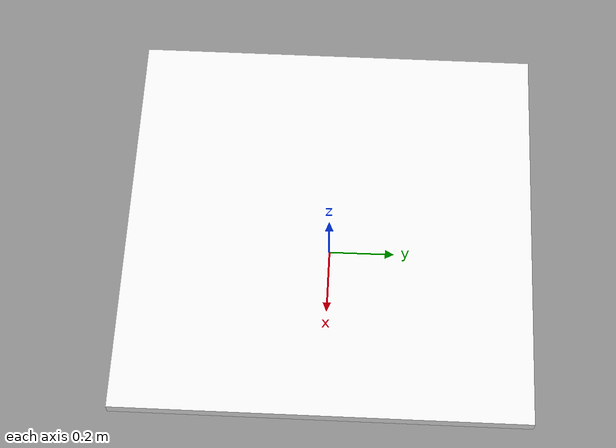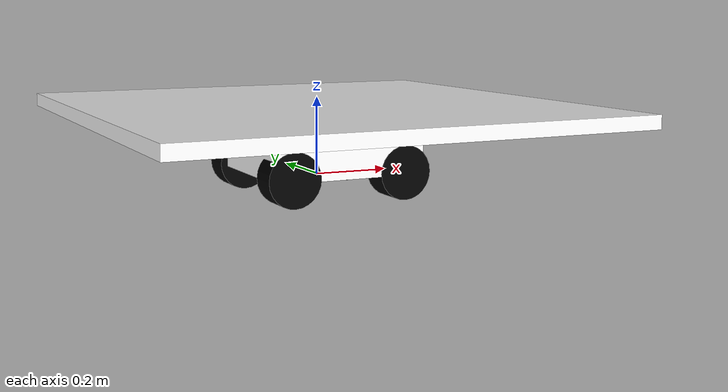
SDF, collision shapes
<sdf version='1.9'>
  <model name='r1_rover'>
    <link name='base_link'>
      <pose>0 0 0 0 -0 0</pose>
      <inertial>
        <pose>0 0 0 0 -0 0</pose>
        <mass>50.0</mass>
        <inertia>
          <ixx>0.185415</ixx>
          <ixy>0.0</ixy>
          <ixz>0.0</ixz>
          <iyy>0.185415</iyy>
          <iyz>0.0</iyz>
          <izz>0.266665</izz>
        </inertia>
      </inertial>
      <collision name='odom_fixed_joint_lump__base_link_collision'>
        <pose>0 0 0.075 0 -0 0</pose>
        <geometry>
          <box>
            <size>0.40 0.40 0.12</size>
          </box>
        </geometry>
      </collision>
      <collision name='aruco_landing_pad_collision'>
        <pose>0 0 0.1675 0 -0 0</pose>
        <geometry>
          <box>
            <size>1.20 1.20 0.035</size>
          </box>
        </geometry>
        <max_contacts>16</max_contacts>
        <surface>
          <friction>
            <ode>
              <mu>1.2</mu>
              <mu2>1.2</mu2>
            </ode>
          </friction>
          <bounce>
            <restitution_coefficient>0</restitution_coefficient>
            <threshold>1000000</threshold>
          </bounce>
          <contact>
            <ode>
              <min_depth>0.001</min_depth>
              <max_vel>0.02</max_vel>
              <kp>1000000</kp>
              <kd>100</kd>
            </ode>
          </contact>
        </surface>
      </collision>
      <sensor name='landing_pad_contact' type='contact'>
        <always_on>true</always_on>
        <update_rate>100</update_rate>
        <topic>/landing_pad/contact</topic>
        <contact>
          <collision>aruco_landing_pad_collision</collision>
        </contact>
      </sensor>
      <visual name='odom_fixed_joint_lump__base_link_visual'>
        <pose>0 0 0 0 -0 0</pose>
        <geometry>
          <mesh>
            <scale>1 1 1</scale>
            <uri>model://r1_rover/meshes/chassis_link.STL</uri>
          </mesh>
        </geometry>
        <material>
          <diffuse>1.0 1.0 1.0</diffuse>
          <specular>1.0 1.0 1.0</specular>
        </material>
      </visual>
      <visual name='odom_fixed_joint_lump__top_link_visual_1'>
        <pose>0 0 0.114486 0 -0 0</pose>
        <geometry>
          <mesh>
            <scale>1 1 1</scale>
            <uri>model://r1_rover/meshes/top_link.STL</uri>
          </mesh>
        </geometry>
        <material>
          <diffuse>1.0 1.0 1.0</diffuse>
          <specular>1.0 1.0 1.0</specular>
        </material>
      </visual>
      <visual name='odom_fixed_joint_lump__battery_link_visual_2'>
        <pose>-0.09302 -0.000128 0.114486 0 -0 0</pose>
        <geometry>
          <mesh>
            <scale>1 1 1</scale>
            <uri>model://r1_rover/meshes/battery_link.STL</uri>
          </mesh>
        </geometry>
        <material>
          <diffuse>0.0 0.0 0.0</diffuse>
          <specular>0.5 0.5 0.5</specular>
        </material>
      </visual>
      <visual name='odom_fixed_joint_lump__housing_link_visual_3'>
        <pose>0.03473 0 0.114486 0 -0 0</pose>
        <geometry>
          <mesh>
            <scale>1 1 1</scale>
            <uri>model://r1_rover/meshes/housing_link.STL</uri>
          </mesh>
        </geometry>
        <material>
          <diffuse>0.0 0.0 0.0</diffuse>
          <specular>0.5 0.5 0.5</specular>
        </material>
      </visual>
      <visual name='aruco_landing_marker_visual'>
        <pose>0 0 0.15 0 0 0</pose>
        <geometry>
          <plane>
            <normal>0 0 1</normal>
            <size>1.20 1.20</size>
          </plane>
        </geometry>
        <material>
          <ambient>1 1 1 1</ambient>
          <diffuse>1 1 1 1</diffuse>
          <pbr>
            <metal>
              <albedo_map>model://aruco_landing_marker/materials/textures/aruco_multi_scale_pad.png</albedo_map>
              <roughness>1.0</roughness>
              <metalness>0.0</metalness>
            </metal>
          </pbr>
        </material>
      </visual>
      <visual name='odom_fixed_joint_lump__l_antenna_link_visual_4'>
        <pose>-0.1565 0.0762 0.114486 0 -0 0</pose>
        <geometry>
          <mesh>
            <scale>1 1 1</scale>
            <uri>model://r1_rover/meshes/antenna_link.STL</uri>
          </mesh>
        </geometry>
        <material>
          <diffuse>0.0 0.0 0.0</diffuse>
          <specular>0.5 0.5 0.5</specular>
        </material>
      </visual>
      <visual name='odom_fixed_joint_lump__r_antenna_link_visual_5'>
        <pose>-0.1565 -0.0762 0.114486 0 -0 0</pose>
        <geometry>
          <mesh>
            <scale>1 1 1</scale>
            <uri>model://r1_rover/meshes/antenna_link.STL</uri>
          </mesh>
        </geometry>
        <material>
          <diffuse>0.0 0.0 0.0</diffuse>
          <specular>0.5 0.5 0.5</specular>
        </material>
      </visual>
      <sensor name="imu_sensor" type="imu">
        <pose degrees="true">0 0 0 180 0 0</pose>
        <always_on>1</always_on>
        <update_rate>1000</update_rate>
      </sensor>
      <sensor name="air_pressure_sensor" type="air_pressure">
        <always_on>1</always_on>
        <update_rate>50</update_rate>
        <air_pressure>
          <pressure>
            <noise type="gaussian">
              <mean>0</mean>
              <stddev>0.01</stddev>
            </noise>
          </pressure>
        </air_pressure>
      </sensor>
    </link>
      <link name='lf_wheel_link'>
      <pose>0.15 0.16317 0.0215 0 -0 0</pose>
      <inertial>
        <pose>0 0 0 1.57079632679 0 0</pose>
        <mass>0.414</mass>
        <inertia>
          <ixx>0.00068682</ixx>
          <ixy>0</ixy>
          <ixz>0</ixz>
          <iyy>0.00068682</iyy>
          <iyz>0</iyz>
          <izz>0.00097299</izz>
        </inertia>
      </inertial>
      <collision name='lf_wheel_link_collision'>
        <pose>0 0 0 1.57079632679 0 0</pose>
        <geometry>
          <cylinder>
            <radius>0.0686</radius>
            <length>0.0762</length>
          </cylinder>
        </geometry>
        <max_contacts>1</max_contacts>
        <surface>
          <friction>
            <torsional>
              <coefficient>0.25</coefficient>
              <use_patch_radius>1</use_patch_radius>
              <surface_radius>0.0686</surface_radius>
            </torsional>
            <ode>
              <mu>0.7</mu>
              <mu2>0.7</mu2>
              <fdir1>1 0 0</fdir1>
            </ode>
          </friction>
          <bounce>
            <restitution_coefficient>0</restitution_coefficient>
            <threshold>1e6</threshold>
          </bounce>
          <contact>
            <ode>
              <min_depth>0.001</min_depth>
              <max_vel>0.0</max_vel>
              <kp>1.0e6</kp>
              <kd>100.0</kd>
            </ode>
          </contact>
        </surface>
      </collision>
      <visual name='lf_wheel_link_visual'>
        <pose>0 0 0 0 -0 0</pose>
        <geometry>
          <mesh>
            <scale>1 1 1</scale>
            <uri>model://r1_rover/meshes/wheel_link.STL</uri>
          </mesh>
        </geometry>
        <material>
          <diffuse>0.0 0.0 0.0</diffuse>
          <specular>0.5 0.5 0.5</specular>
        </material>
      </visual>
    </link>
    <joint name='motor_0' type='revolute'>
      <child>lf_wheel_link</child>
      <parent>base_link</parent>
      <axis>
        <xyz>0 1 0</xyz>
        <limit>
          <lower>-1e+16</lower>
          <upper>1e+16</upper>
        </limit>
        <dynamics>
          <damping>0.0005</damping>
        </dynamics>
      </axis>
    </joint>
    <link name='lb_wheel_link'>
      <pose>-0.15 0.16317 0.0215 0 -0 0</pose>
      <inertial>
        <pose>0 0 0 1.57079632679 0 0</pose>
        <mass>0.414</mass>
        <inertia>
          <ixx>0.00068682</ixx>
          <ixy>0</ixy>
          <ixz>0</ixz>
          <iyy>0.00068682</iyy>
          <iyz>0</iyz>
          <izz>0.00097299</izz>
        </inertia>
      </inertial>
      <collision name='lb_wheel_link_collision'>
        <pose>0 0 0 1.57079632679 0 0</pose>
        <geometry>
          <cylinder>
            <radius>0.0686</radius>
            <length>0.0762</length>
          </cylinder>
        </geometry>
        <max_contacts>1</max_contacts>
        <surface>
          <friction>
            <torsional>
              <coefficient>0.25</coefficient>
              <use_patch_radius>1</use_patch_radius>
              <surface_radius>0.0686</surface_radius>
            </torsional>
            <ode>
              <mu>0.7</mu>
              <mu2>0.7</mu2>
              <fdir1>1 0 0</fdir1>
            </ode>
          </friction>
          <bounce>
            <restitution_coefficient>0</restitution_coefficient>
            <threshold>1e6</threshold>
          </bounce>
          <contact>
            <ode>
              <min_depth>0.001</min_depth>
              <max_vel>0.0</max_vel>
              <kp>1.0e6</kp>
              <kd>100.0</kd>
            </ode>
          </contact>
        </surface>
      </collision>
      <visual name='lb_wheel_link_visual'>
      <pose>0 0 0 0 -0 0</pose>
      <geometry>
        <mesh>
          <scale>1 1 1</scale>
          <uri>model://r1_rover/meshes/wheel_link.STL</uri>
        </mesh>
      </geometry>
      <material>
        <diffuse>0.0 0.0 0.0</diffuse>
        <specular>0.5 0.5 0.5</specular>
      </material>
      </visual>
    </link>
    <joint name='motor_1' type='revolute'>
      <child>lb_wheel_link</child>
      <parent>base_link</parent>
      <axis>
        <xyz>0 1 0</xyz>
        <limit>
          <lower>-1e+16</lower>
          <upper>1e+16</upper>
        </limit>
        <dynamics>
          <damping>0.0005</damping>
        </dynamics>
      </axis>
    </joint>
    <link name='rf_wheel_link'>
      <pose>0.15 -0.16317 0.0215 0 -0 0</pose>
      <inertial>
        <pose>0 0 0 1.57079632679 0 0</pose>
        <mass>0.414</mass>
        <inertia>
          <ixx>0.00068682</ixx>
          <ixy>0</ixy>
          <ixz>0</ixz>
          <iyy>0.00068682</iyy>
          <iyz>0</iyz>
          <izz>0.00097299</izz>
        </inertia>
      </inertial>
      <collision name='rf_wheel_link_collision'>
        <pose>0 0 0 1.57079632679 0 0</pose>
        <geometry>
          <cylinder>
            <radius>0.0686</radius>
            <length>0.0762</length>
          </cylinder>
        </geometry>
        <max_contacts>1</max_contacts>
        <surface>
          <friction>
            <torsional>
              <coefficient>0.25</coefficient>
              <use_patch_radius>1</use_patch_radius>
              <surface_radius>0.0686</surface_radius>
            </torsional>
            <ode>
              <mu>0.7</mu>
              <mu2>0.7</mu2>
              <fdir1>1 0 0</fdir1>
            </ode>
          </friction>
          <bounce>
            <restitution_coefficient>0</restitution_coefficient>
            <threshold>1e6</threshold>
          </bounce>
          <contact>
            <ode>
              <min_depth>0.001</min_depth>
              <max_vel>0.0</max_vel>
              <kp>1.0e6</kp>
              <kd>100.0</kd>
            </ode>
          </contact>
        </surface>
      </collision>
      <visual name='rf_wheel_link_visual'>
        <pose>0 0 0 0 -0 0</pose>
        <geometry>
          <mesh>
            <scale>1 1 1</scale>
            <uri>model://r1_rover/meshes/wheel_link.STL</uri>
          </mesh>
        </geometry>
        <material>
          <diffuse>0.0 0.0 0.0</diffuse>
          <specular>0.5 0.5 0.5</specular>
        </material>
      </visual>
    </link>
    <joint name='motor_2' type='revolute'>
      <child>rf_wheel_link</child>
      <parent>base_link</parent>
      <axis>
        <xyz>0 -1 0</xyz>
        <limit>
          <lower>-1e+16</lower>
          <upper>1e+16</upper>
        </limit>
        <dynamics>
          <damping>0.0005</damping>
        </dynamics>
      </axis>
    </joint>
    <link name='rb_wheel_link'>
      <pose>-0.15 -0.16317 0.0215 0 -0 0</pose>
      <inertial>
        <pose>0 0 0 1.57079632679 0 0</pose>
        <mass>0.414</mass>
        <inertia>
          <ixx>0.00068682</ixx>
          <ixy>0</ixy>
          <ixz>0</ixz>
          <iyy>0.00068682</iyy>
          <iyz>0</iyz>
          <izz>0.00097299</izz>
        </inertia>
      </inertial>
      <collision name='rb_wheel_link_collision'>
        <pose>0 0 0 1.57079632679 0 0</pose>
        <geometry>
          <cylinder>
            <radius>0.0686</radius>
            <length>0.0762</length>
          </cylinder>
        </geometry>
        <max_contacts>1</max_contacts>
        <surface>
          <friction>
            <torsional>
              <coefficient>0.25</coefficient>
              <use_patch_radius>1</use_patch_radius>
              <surface_radius>0.0686</surface_radius>
            </torsional>
            <ode>
              <mu>0.7</mu>
              <mu2>0.7</mu2>
              <fdir1>1 0 0</fdir1>
            </ode>
          </friction>
          <bounce>
            <restitution_coefficient>0</restitution_coefficient>
            <threshold>1e6</threshold>
          </bounce>
          <contact>
          <ode>
            <min_depth>0.001</min_depth>
            <kp>1e8</kp>
          </ode>
          </contact>
        </surface>
      </collision>
      <visual name='rb_wheel_link_visual'>
        <pose>0 0 0 0 -0 0</pose>
        <geometry>
          <mesh>
            <scale>1 1 1</scale>
            <uri>model://r1_rover/meshes/wheel_link.STL</uri>
          </mesh>
        </geometry>
        <material>
          <diffuse>0.0 0.0 0.0</diffuse>
          <specular>0.5 0.5 0.5</specular>
        </material>
      </visual>
    </link>
    <joint name='motor_3' type='revolute'>
      <child>rb_wheel_link</child>
      <parent>base_link</parent>
      <axis>
        <xyz>0 -1 0</xyz>
        <limit>
          <lower>-1e+16</lower>
          <upper>1e+16</upper>
        </limit>
        <dynamics>
          <damping>0.0005</damping>
        </dynamics>
      </axis>
    </joint>
    <static>0</static>

    <!-- plugins -->
    <plugin name="gz::sim::systems::JointStatePublisher"
      filename="gz-sim-joint-state-publisher-system">
    </plugin>

    <plugin name="gz::sim::systems::OdometryPublisher"
      filename="gz-sim-odometry-publisher-system">
      <odom_frame>odom</odom_frame>
      <robot_base_frame>base_link</robot_base_frame>
      <dimensions>3</dimensions>
    </plugin>

    <plugin filename="gz-sim-apply-joint-force-system"
      name="gz::sim::systems::ApplyJointForce">
      <joint_name>motor_0</joint_name>
      </plugin>
    <plugin filename="gz-sim-apply-joint-force-system"
      name="gz::sim::systems::ApplyJointForce">
      <joint_name>motor_1</joint_name>
      </plugin>
    <plugin filename="gz-sim-apply-joint-force-system"
      name="gz::sim::systems::ApplyJointForce">
      <joint_name>motor_2</joint_name>
    </plugin>
    <plugin
      filename="gz-sim-apply-joint-force-system"
      name="gz::sim::systems::ApplyJointForce">
      <joint_name>motor_3</joint_name>
    </plugin>

    <plugin name="gz::sim::systems::VelocityControl"
      filename="gz-sim-velocity-control-system">
      <link_name>base_link</link_name>
      <topic>/model/r1_rover/cmd_vel</topic>
      <initial_linear>0 0 0</initial_linear>
      <initial_angular>0 0 0</initial_angular>
    </plugin>

  </model>
</sdf>
